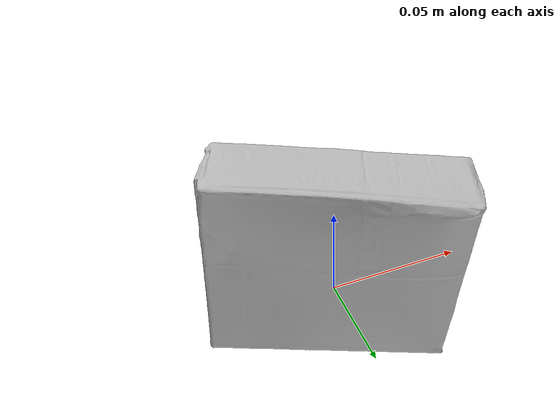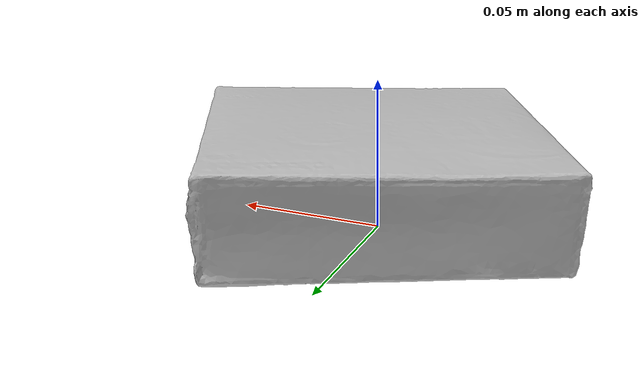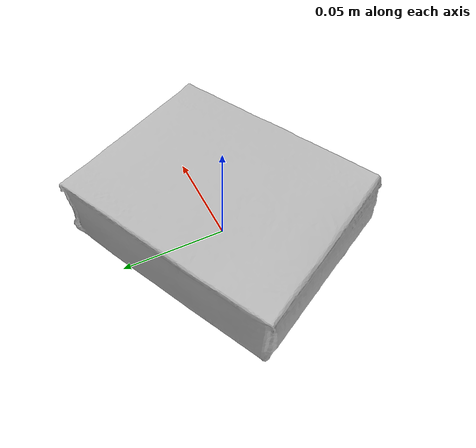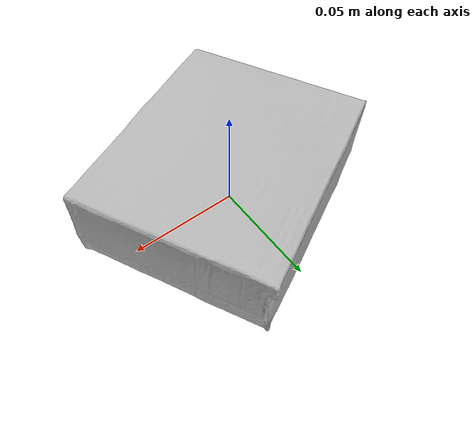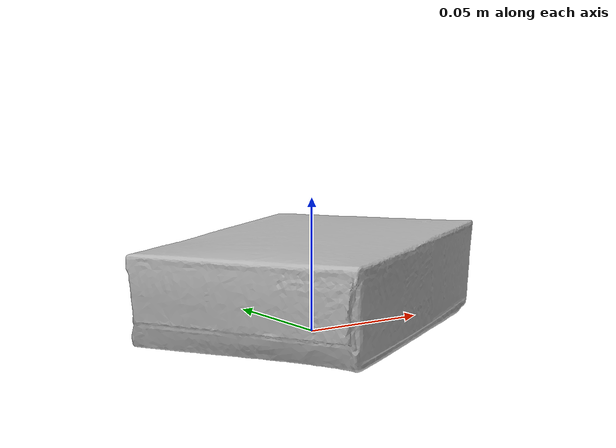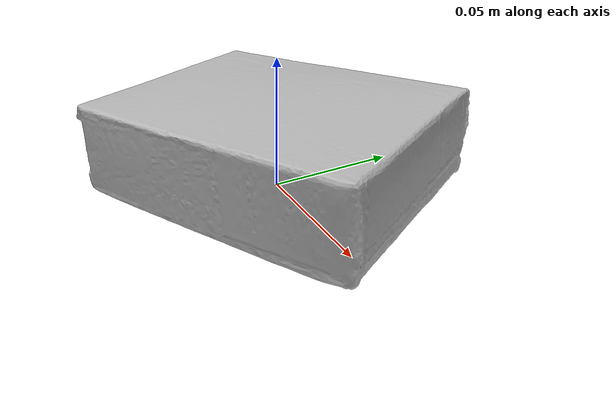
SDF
<?xml version="1.0" ?>
<sdf version='1.8'>
  <model name='ycb_008_pudding_box'>
    <link name='body'>
      <inertial>
        <mass>0.187</mass>
        <pose>0.00086864957 -0.000360117935 0.019011702 0 0 0</pose>
        <inertia>
          <ixx>0.000151722587612</ixx>
          <ixy>-2.74392307099e-05</ixy>
          <ixz>-3.63567015346e-06</ixz>
          <iyy>0.000189163897167</iyy>
          <iyz>-1.15177563596e-06</iyz>
          <izz>0.000301634652645</izz>
        </inertia>
      </inertial>
      <visual name='ycb_008_pudding_box_visual'>
        <pose>-0.000649 -0.019156 0.000354 0 0 0</pose>
        <geometry>
          <mesh>
            <uri>model://ycb_008_pudding_box/meshes/textured.dae</uri>
          </mesh>
        </geometry>
      </visual>
      <collision name='ycb_008_pudding_box_collision'>
        <pose>-0.000649 -0.019156 0.000354 0 0 0</pose>
        <geometry>
          <mesh>
            <uri>model://ycb_008_pudding_box/meshes/nontextured.stl</uri>
          </mesh>
        </geometry>
        <max_contacts>10</max_contacts>
        <surface>
          <contact>
            <ode>
              <kp>1e15</kp>
              <kd>1e13</kd>
            </ode>
          </contact>
        </surface>
      </collision>
    </link>
  </model>
</sdf>
